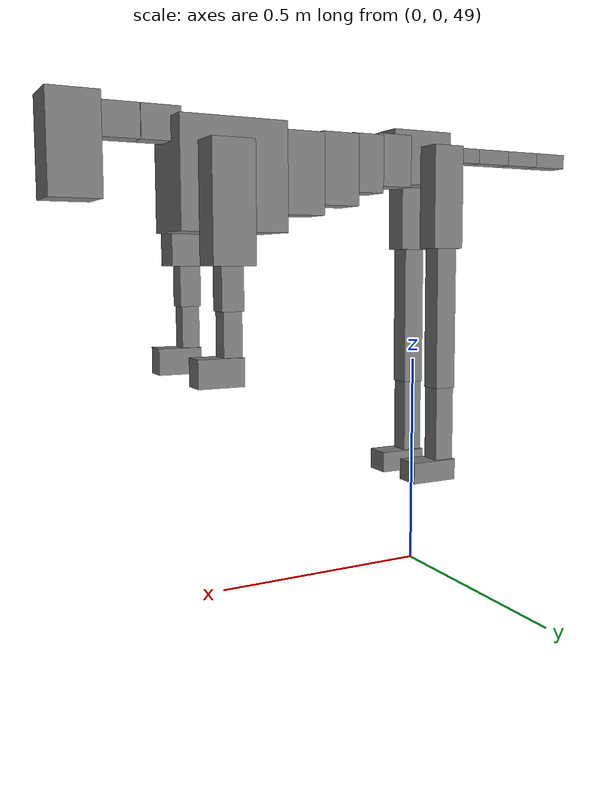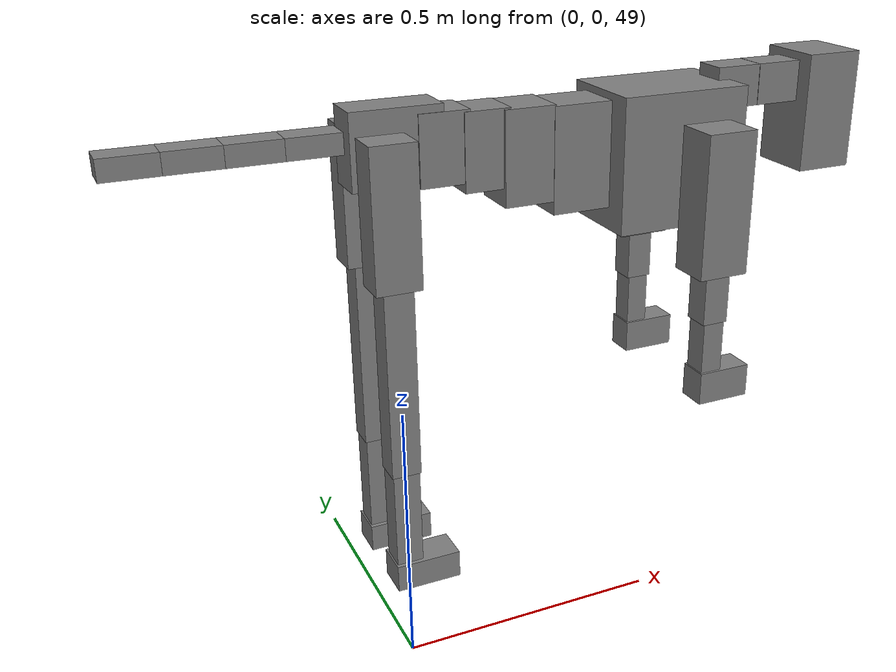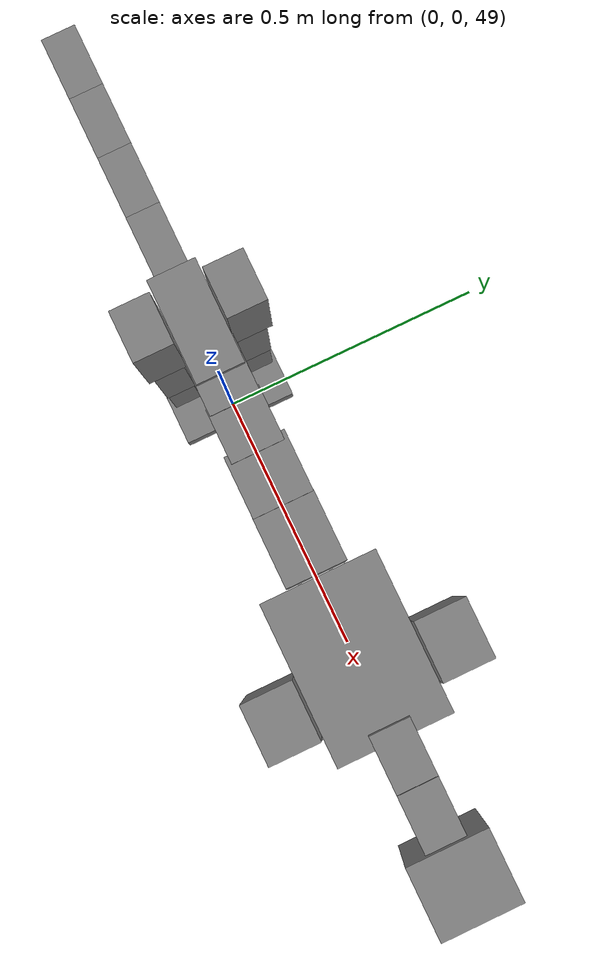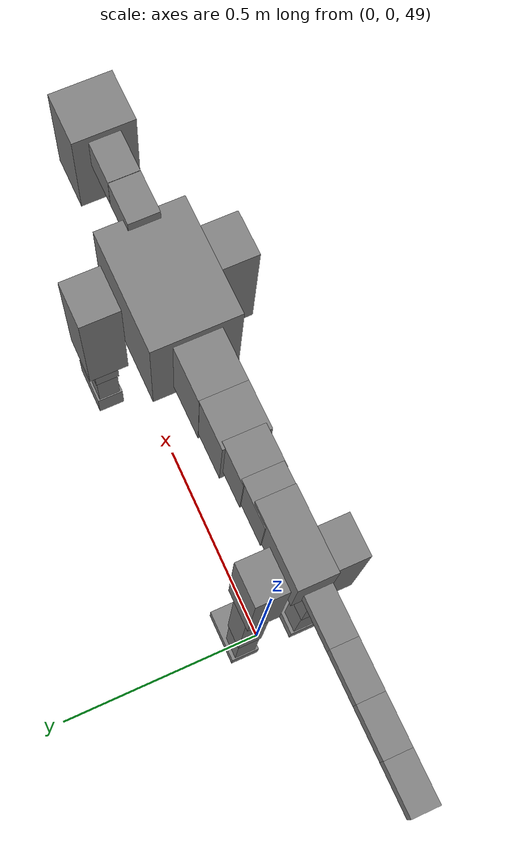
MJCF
<mujoco model="dog">

    <default>
        <joint armature="0.02" stiffness="1" damping="0.2" limited="true"/>
        <geom condim="3" friction="1 0.05 0.05" margin="0.01"/>
        <motor ctrllimited="true" ctrlrange="-1.0 1.0" forcelimited="true" gear="50"/>
    </default>

    <compiler inertiafromgeom="true" angle="radian"/>

    <option timestep="0.016" iterations="50" tolerance="1e-10" solver="Newton" jacobian="dense" cone="pyramidal"/>

    <size nconmax="20000" njmax="60000" nstack="5000000"/>
    <visual>
        <map force="0.1" zfar="30"/>
        <rgba haze="0.15 0.25 0.35 1"/>
        <quality shadowsize="2048"/>
        <global offwidth="800" offheight="800"/>
    </visual>

    <asset>
        <texture type="skybox" builtin="gradient" rgb1="0.3 0.5 0.7" rgb2="0 0 0" width="512" height="512"/>
        <texture name="texplane" type="2d" builtin="checker" rgb1=".2 .3 .4" rgb2=".1 0.15 0.2" width="512" height="512"
                 mark="cross" markrgb=".8 .8 .8"/>
        <texture name="texgeom" type="cube" builtin="flat" mark="cross" width="127" height="1278" rgb1="0.8 0.6 0.4"
                 rgb2="0.8 0.6 0.4" markrgb="1 1 1" random="0.01"/>

        <material name="matplane" reflectance="0.3" texture="texplane" texrepeat="1 1" texuniform="true"/>
        <material name="matgeom" texture="texgeom" texuniform="true" rgba="0.8 0.6 .4 1"/>
    </asset>

    <worldbody>
        <geom name="floor" pos="0 0 0" size="0 0 .25" type="plane" material="matplane" condim="3"/>

        <light directional="false" diffuse=".2 .2 .2" specular="0 0 0" pos="0 0 5" dir="0 0 -1" castshadow="false"/>
        <light mode="targetbodycom" target="torso" directional="false" diffuse=".8 .8 .8" specular="0.3 0.3 0.3"
               pos="0 0 4.0" dir="0 0 -1"/>

        <body name="root" pos="0 0 50">
            <freejoint name="root_1"/>
            <geom type="box" pos="0 0 -0.02" size="0.0774  0.0358  0.063" density="2030"/>

            <body name="spine1" pos="0.054 0 0">
                <joint name="spine1_y" axis="0 1 0" range="0 0.7" limited="true"/>
                <geom type="box" pos="0.02375 0 -0.03" size="0.04375  0.0375  0.05985" density="2030"/>

                <body name="spine2" pos="0.0612 0 0">
                    <joint name="spine2_y" axis="0 1 0" range="-0.15 0.15" limited="true"/>
                    <geom type="box" pos="0.03555  0  -0.04" size="0.04055  0.039  0.06615" density="2030"/>

                    <body name="spine3" pos="0.0730 0 0">
                        <joint name="spine3_y" axis="0 1 0" range="-0.15 0.15" limited="true"/>
                        <geom type="box" pos="0.03555  0  -0.057" size="0.04555  0.0445  0.081" density="2030"/>

                        <body name="spine4" pos="0.0780 0 0">
                            <joint name="spine4_y" axis="0 1 0" range="-0.15 0.15" limited="true"/>
                            <geom type="box" pos="0.05265  0  -0.07" size="0.05265  0.045  0.09135" density="2030"/>

                            <body name="torso" pos="0.1082 0 0">
                                <joint name="torso_y" axis="0 1 0" range="-0.15 0.15" limited="true"/>
                                <geom type="box" pos="0.11925  0  -0.085" size="0.11925  0.085  0.11745"
                                      density="2030"/>

                                <body name="neck1" pos="0.2160  0   0.0180">
                                    <joint name="neck1_y" axis="0 1 0" range="-1.2  -1" limited="true"/>
                                    <geom type="box" pos="0.0423  0  0" size="0.0423  0.03  0.036" density="2325"/>

                                    <body name="neck2" pos="0.0853  0  0">
                                        <joint name="neck2_y" axis="0 1 0" range="0.1  0" limited="true"/>
                                        <geom type="box" pos="0.0423  0  0" size="0.0423  0.03  0.036" density="2325"/>

                                        <body name="head" pos="0.0853  0  0">
                                            <joint name="head_y" axis="0 1 0" range="-0.3  -0.2" limited="true"/>
                                            <geom type="box" pos="0.0531  0  -0.055" size="0.0531  0.06  0.1044"
                                                  density="4030"/>

                                        </body>
                                    </body>
                                </body>

                                <body name="front_shoulder" pos="0.156  0   -0.0480">
                                    <joint name="front_shoulder_y" axis="0 1 0" range="-1 1.5" limited="true"/>
                                    <geom type="box" pos="0 0.13 -0.0992" size="0.0461  0.0394  0.1259" density="1158"/>
                                    <geom type="box" pos="0 -0.13 -0.0992" size="0.0461  0.0394  0.1259"
                                          density="1158"/>

                                    <body name="front_elbow" pos="0  0  -0.1984">
                                        <joint name="front_elbow_y" axis="0 1 0" range="-2 0" limited="true"/>
                                        <geom type="box" pos="0 0.13 -0.0590" size="0.0238  0.0243  0.0590"
                                              density="1081"/>
                                        <geom type="box" pos="0 -0.13 -0.0590" size="0.0238  0.0243  0.0590"
                                              density="1081"/>

                                        <body name="front_wrist" pos="0  0  -0.1180">
                                            <joint name="front_wrist_y" axis="0 1 0" range="-0.2 0" limited="true"/>
                                            <geom type="box" pos="0 0.13 -0.0543" size="0.0200  0.0223  0.0674"
                                                  density="1664"/>
                                            <geom type="box" pos="0 -0.13 -0.0543" size="0.0200  0.0223  0.0674"
                                                  density="1664"/>

                                            <body name="front_finger_end" pos="0  0  -0.1085">
                                                <joint name="front_finger_y" axis="0 1 0" range="-0.4 1"
                                                       limited="true"/>
                                                <geom type="box" pos="0.0271  0.13  -0.0148"
                                                      size="0.0497  0.0271  0.0298" density="1515"/>
                                                <geom type="box" pos="0.0271  -0.13  -0.0148"
                                                      size="0.0497  0.0271  0.0298" density="1515"/>

                                            </body>

                                        </body>
                                    </body>
                                </body>

                            </body>
                        </body>
                    </body>
                </body>
            </body>

            <body name="back_hip" pos="-0.03 0 -0.018">
                <joint name="back_hip_y" axis="0 1 0" range="-1.5 0.3" limited="true"/>
                <geom type="box" pos="0 0.07 -0.0960" size="0.0391  0.0306  0.1188" density="1154"/>
                <geom type="box" pos="0 -0.07 -0.0960" size="0.0391  0.0306  0.1188" density="1154"/>

                <body name="back_knee" pos="0  0  -0.1920">
                    <joint name="back_knee_y" axis="0 1 0" range="0 2.8" limited="true"/>
                    <geom type="box" pos="0 0.07 -0.1687" size="0.0256  0.0252  0.1843" density="1227"/>
                    <geom type="box" pos="0 -0.07 -0.1687" size="0.0256  0.0252  0.1843" density="1227"/>

                    <body name="back_ankle" pos="0  0  -0.3375">
                        <joint name="back_ankle_y" axis="0 1 0" range="-2.2 0" limited="true"/>
                        <geom type="box" pos="0 0.07 -0.1016" size="0.0234  0.0234  0.1129" density="1284"/>
                        <geom type="box" pos="0 -0.07 -0.1016" size="0.0234  0.0234  0.1129" density="1284"/>

                        <body name="back_toe_end" pos="0  0  -0.2033">
                            <joint name="back_toe_y" axis="0 1 0" range="-0.4 1" limited="true"/>
                            <geom type="box" pos="0.0313  0.07  -0.0096" size="0.0574  0.0313  0.0246" density="1515"/>
                            <geom type="box" pos="0.0313  -0.07  -0.0096" size="0.0574  0.0313  0.0246" density="1515"/>

                        </body>
                    </body>
                </body>
            </body>

            <body name="tail1" pos="-0.074 0 -0.006">
                <joint name="tail1_y" axis="0 1 0" range="-0.2 0.2" limited="true"/>
                <geom type="box" pos="-0.0536  0  0" size="0.045  0.025  0.0175" density="1587"/>

                <body name="tail2" pos="-0.09 0 0">
                    <joint name="tail2_y" axis="0 1 0" range="-0.2 0.2" limited="true"/>
                    <geom type="box" pos="-0.0536  0  0" size="0.045  0.025  0.0175" density="1587"/>

                    <body name="tail3" pos="-0.09 0 0">
                        <joint name="tail3_y" axis="0 1 0" range="-0.2 0.2" limited="true"/>
                        <geom type="box" pos="-0.0536  0  0" size="0.045  0.025  0.0175" density="1587"/>

                        <body name="tail4" pos="-0.09 0 0">
                            <joint name="tail4_y" axis="0 1 0" range="-0.2 0.2" limited="true"/>
                            <geom type="box" pos="-0.0536  0  0" size="0.045  0.025  0.0175" density="1587"/>

                        </body>
                    </body>
                </body>
            </body>
        </body>
    </worldbody>

    <actuator>
        <motor joint="spine1_y" forcerange="-150 150     "/>
        <motor joint="spine2_y" forcerange="-150 150     "/>
        <motor joint="spine3_y" forcerange="-150 150     "/>
        <motor joint="spine4_y" forcerange="-150 150     "/>
        <motor joint="torso_y" forcerange="-150 150     "/>
        <motor joint="neck1_y" forcerange="-100 100       "/>
        <motor joint="neck2_y" forcerange="-100 100       "/>
        <motor joint="head_y" forcerange="-150 150       "/>
        <motor joint="front_shoulder_y" forcerange="-199.74 163.07"/>
        <motor joint="front_elbow_y" forcerange="-173.67 103.23"/>
        <motor joint="front_wrist_y" forcerange="-97.42 80.59"/>
        <motor joint="front_finger_y" forcerange="-42.25 62.20"/>
        <motor joint="back_hip_y" forcerange="-247.94 360.48"/>
        <motor joint="back_knee_y" forcerange="-293.85 273.40"/>
        <motor joint="back_angle_y" forcerange="-204.42 70.71"/>
        <motor joint="back_toe_y" forcerange="-112.96 57.62"/>
        <motor joint="tail1_y" forcerange="-50 50     "/>
        <motor joint="tail2_y" forcerange="-50 50     "/>
        <motor joint="tail3_y" forcerange="-50 50     "/>
        <motor joint="tail4_y" forcerange="-50 50     "/>
    </actuator>
</mujoco>
